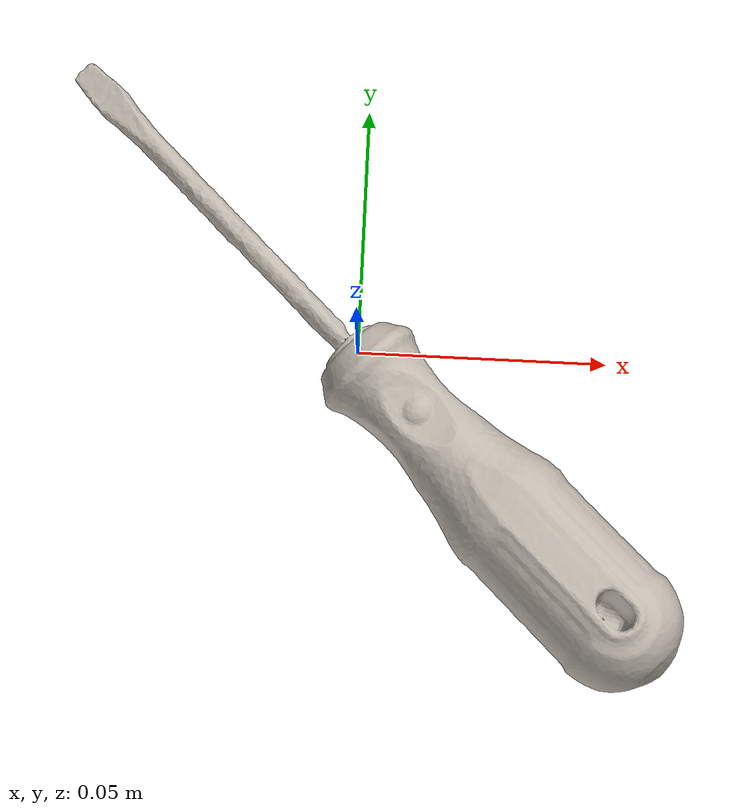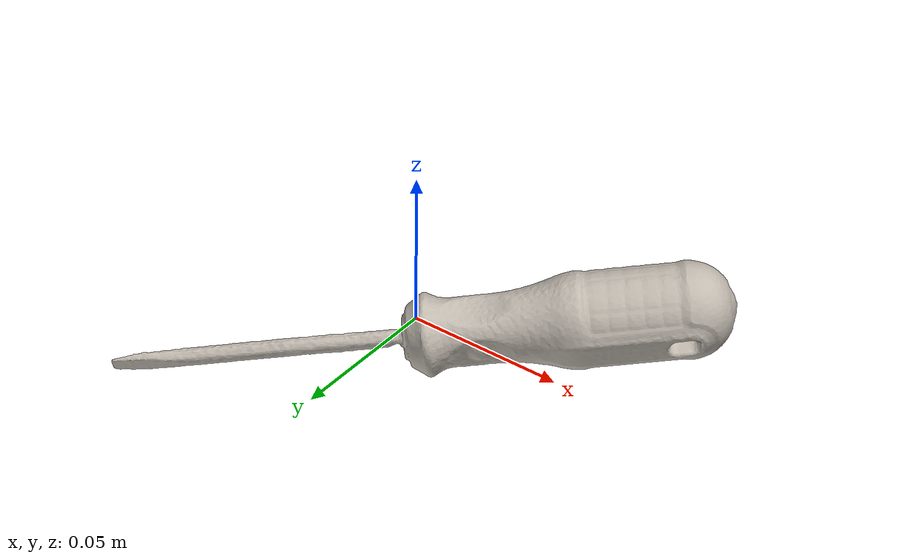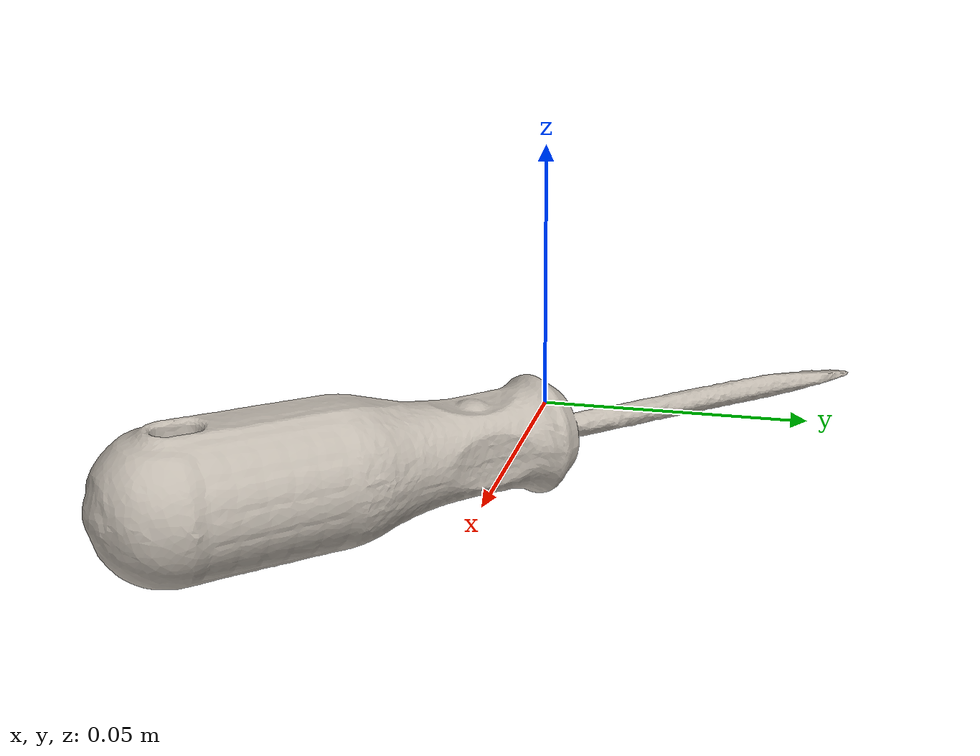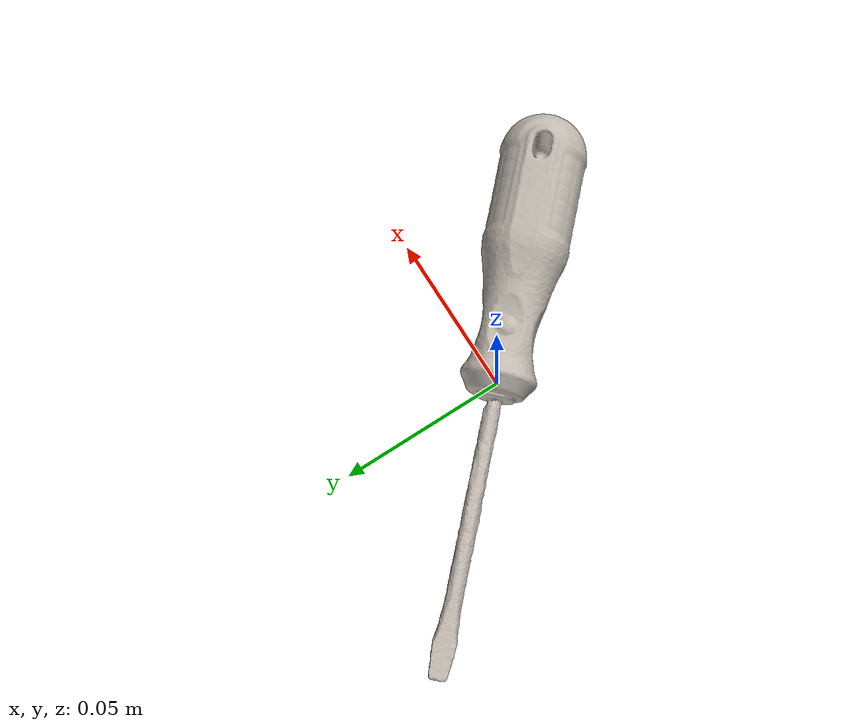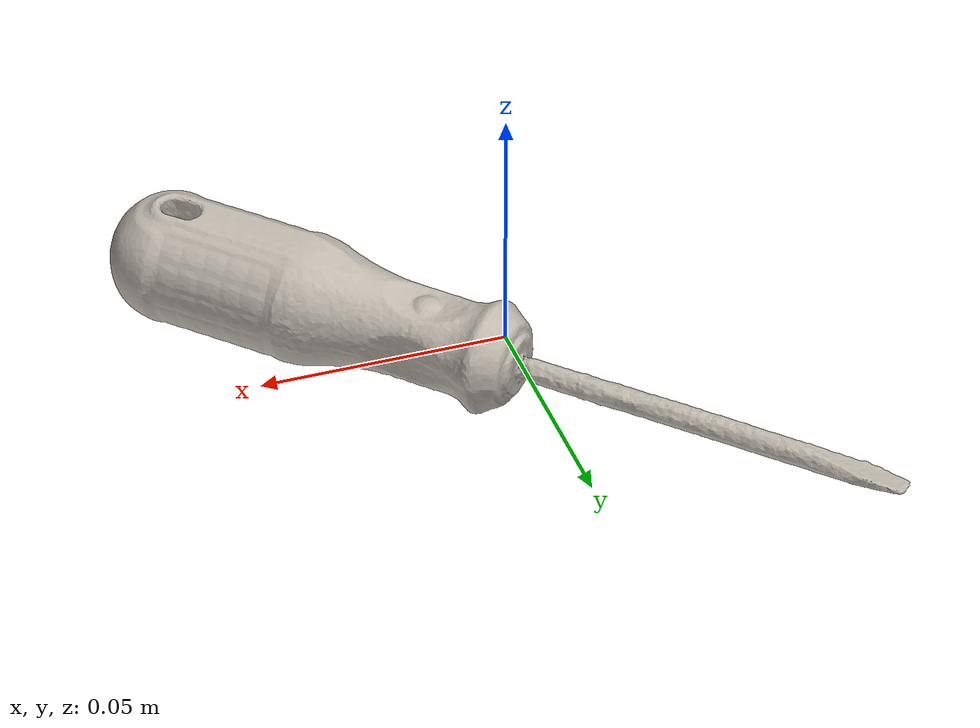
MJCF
<mujoco model="bread">
  <asset>
    <mesh file="nontextured.stl" name="obj_mesh" scale="0.8 0.8 0.8"/>
    <texture file="../../../../../textures/bread.png" type="2d" name="tex-bread" />
    <material name="bread" reflectance="0.7" texrepeat="15 15" texture="tex-bread" texuniform="true"/>
  </asset>
  <worldbody>
    <body>
      <body name="collision">
        <geom pos="0.012492499999999997 -0.011665499999999995 -0.0171135" mesh="obj_mesh" type="mesh" solimp="0.998 0.998 0.001" solref="0.001 1" density="50" friction="0.95 0.3 0.1"  material="bread" group="1" condim="4"/>
      </body>
      <body name="visual">
        <geom pos="0.012492499999999997 -0.011665499999999995 -0.0171135" mesh="obj_mesh" type="mesh" material="bread"  conaffinity="0" contype="0"  group="0" mass="0.0001"/>
        <geom pos="0.012492499999999997 -0.011665499999999995 -0.0171135" mesh="obj_mesh" type="mesh" material="bread"  conaffinity="0" contype="0"  group="1" mass="0.0001"/>
      </body>
      <site rgba="0 0 0 0" size="0.005" pos="0 0 -0.017520499999999998" name="bottom_site"/>
      <site rgba="0 0 0 0" size="0.005" pos="0 0 0.017520499999999998" name="top_site"/>
      <site rgba="0 0 0 0" size="0.005" pos="0.0809355 0.0784425 0.017520499999999998" name="horizontal_radius_site"/>
    </body>
  </worldbody>
</mujoco>
